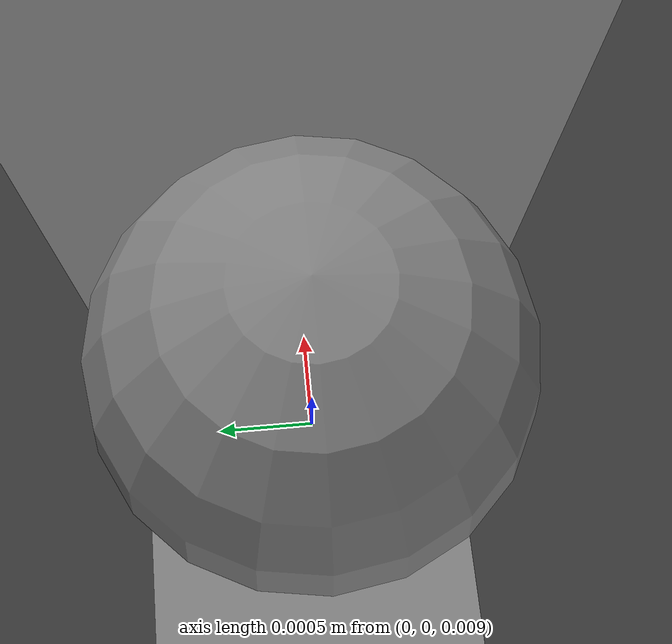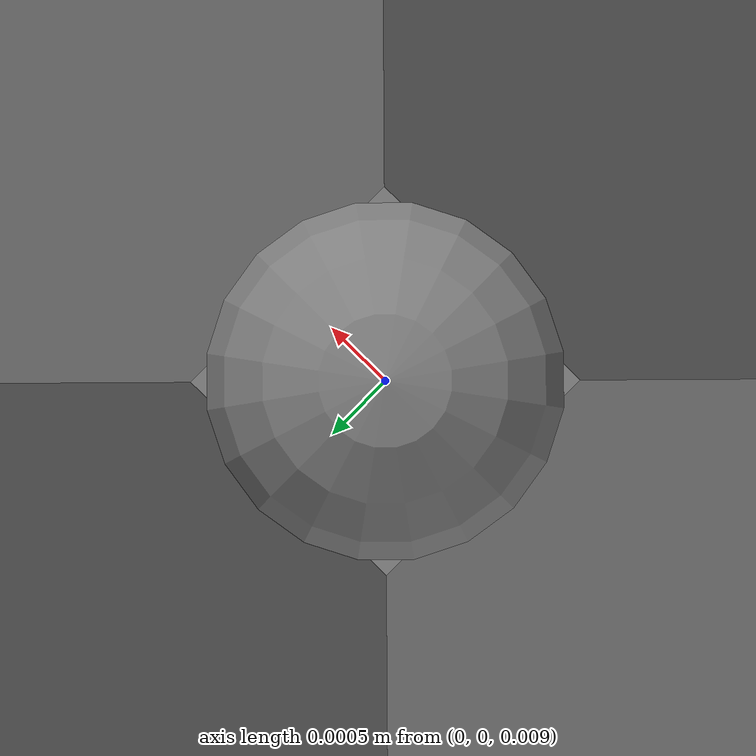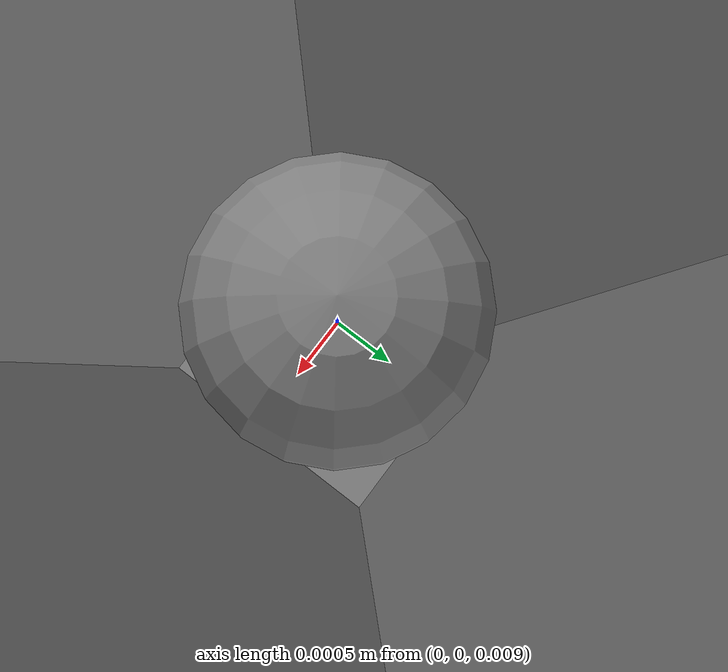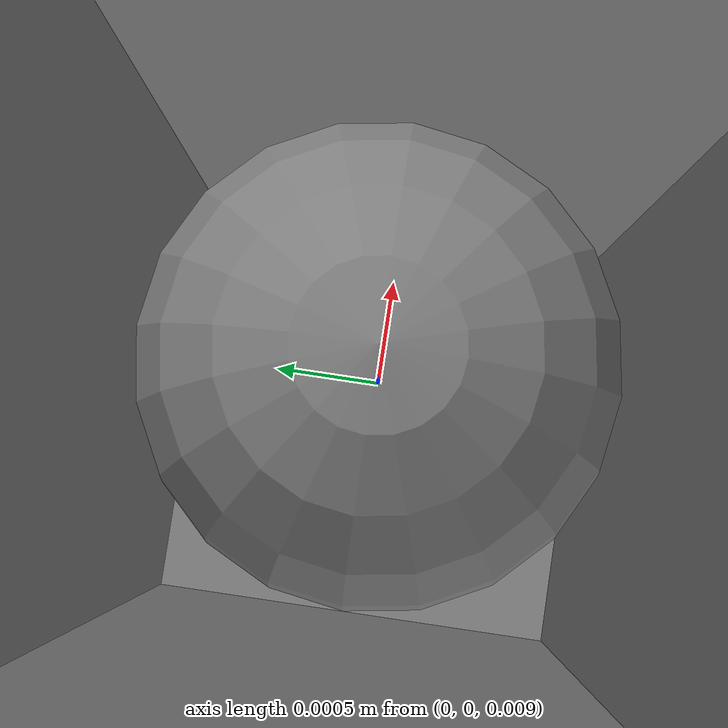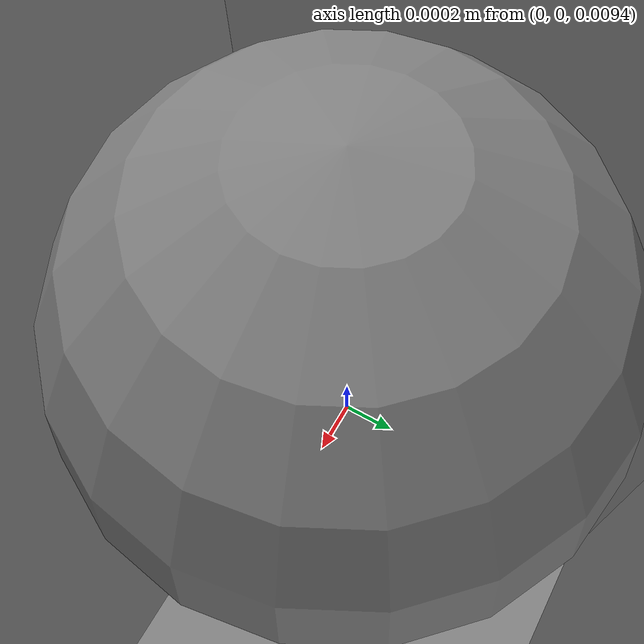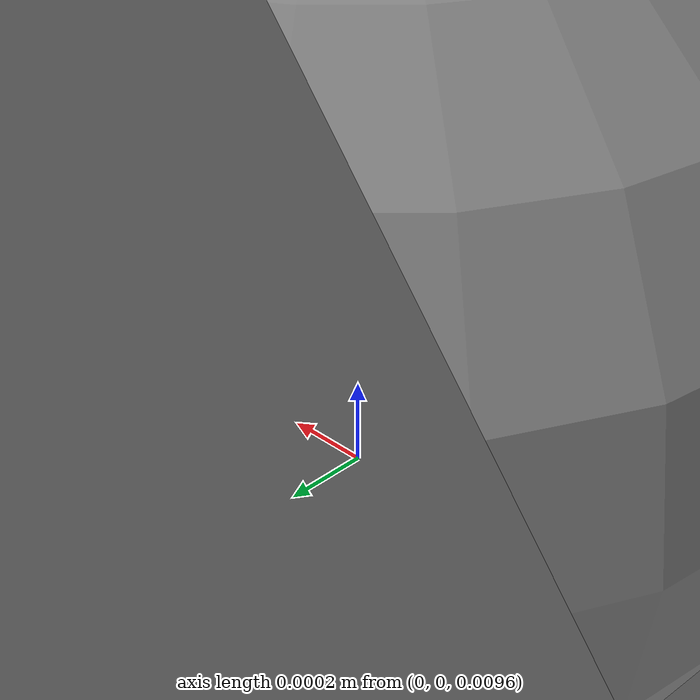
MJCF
<mujoco model="zed_f9p">
  <compiler angle="radian" />
  <worldbody>
    <body name="mount">
      <body name="sensor_link" pos="0 0 0.01">
        <inertial pos="0 0 0" mass="0.032" diaginertia="0.00001 0.00001 0.00002" />
        <geom name="receiver_body" type="box" size="0.03 0.03 0.006" mass="0.032" />
        <site name="sensor_site" pos="0 0 0" size="0.001" />
      </body>
    </body>
  </worldbody>
</mujoco>
